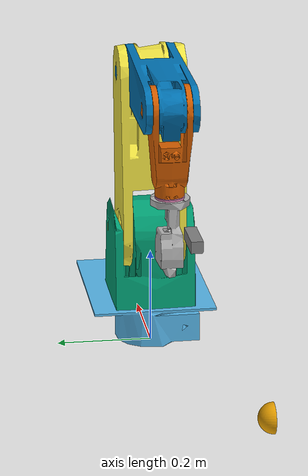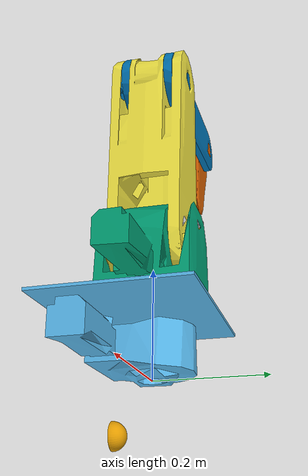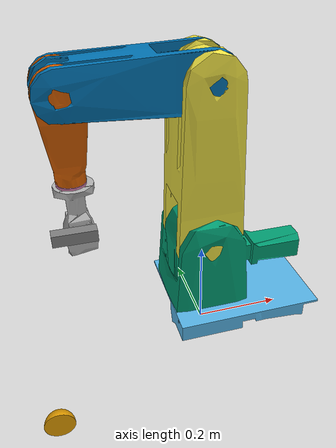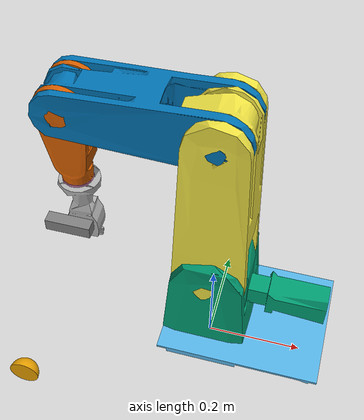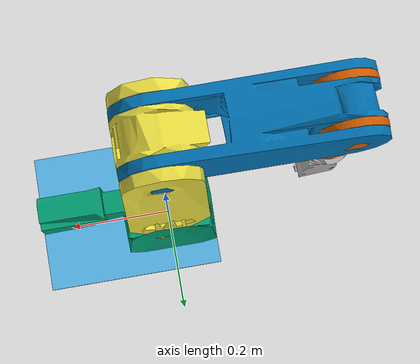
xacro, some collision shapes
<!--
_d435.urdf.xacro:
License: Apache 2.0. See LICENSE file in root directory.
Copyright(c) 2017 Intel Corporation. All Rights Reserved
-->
<?xml version="1.0"?>
<robot xmlns:xacro="http://www.ros.org/wiki/xacro" name="rldp5">

    <!-- Useful Variables (Properties) -->
    <xacro:property name="effort" value="10" />
    <xacro:property name="velocity" value="10" />

    <!-- Useful Macros -->
    <xacro:macro name="default_inertial" params="mass">
        <inertial>
            <mass value="${mass}" />
            <inertia ixx="1.0" ixy="0.0" ixz="0.0"
                     iyy="1.0" iyz="0.0"
                     izz="1.0" />
        </inertial>
    </xacro:macro>

    <xacro:include filename="$(find rldp5_description)/urdf/_d435.urdf.xacro" />

    <xacro:macro name="default_transmission" params="number">
        <transmission name="transmission_${number}">
            <type>transmission_interface/SimpleTransmission</type>
            <joint name="joint_${number}">
                <hardwareInterface>hardware_interface/PositionJointInterface</hardwareInterface>
            </joint>
            <actuator name="motor_${number}">
                <hardwareInterface>hardware_interface/PositionJointInterface</hardwareInterface>
                <mechanicalReduction>1</mechanicalReduction>
            </actuator>
        </transmission>
    </xacro:macro>

    <!-- Links -->
    <link name="world"/>

    <link name="base_link">
        <inertial>
            <origin xyz="0.04223218345086115 -0.01938787744257538 0.057495548139883904" rpy="0 0 0"/>
            <mass value="2.4067491698035863"/>
            <inertia ixx="0.008466" iyy="0.018795" izz="0.024001" ixy="0.002277" iyz="-0.000333" ixz="-0.000705"/>
        </inertial>
        <visual>
            <origin rpy="0 0 0" xyz="0 0 0"/>
            <geometry>
                <mesh filename="package://rldp5_description/mesh/base_link.stl" scale="0.001 0.001 0.001"/>
            </geometry>
        </visual>
        <collision>
            <origin rpy="0 0 0" xyz="0 0 0"/>
            <geometry>
                <mesh filename="package://rldp5_description/mesh/base_link.stl" scale="0.001 0.001 0.001"/>
            </geometry>
        </collision>
    </link>

    <link name="link_1">
        <inertial>
            <origin xyz="0.02666189292548051 -4.87712308473133e-07 0.11114216106472456" rpy="0 0 0"/>
            <mass value="2.489938203553284"/>
            <inertia ixx="0.010589" iyy="0.021835" izz="0.017706" ixy="3e-06" iyz="-0.0" ixz="0.002056"/>
        </inertial>
        <visual>
            <origin rpy="0 0 0" xyz="0.0 0.0 -0.1022"/>
            <geometry>
                <mesh filename="package://rldp5_description/mesh/link_1.stl" scale="0.001 0.001 0.001"/>
            </geometry>
        </visual>
        <collision>
            <origin rpy="0 0 0" xyz="0.0 0.0 -0.1022"/>
            <geometry>
                <mesh filename="package://rldp5_description/mesh/link_1.stl" scale="0.001 0.001 0.001"/>
            </geometry>
        </collision>
    </link>

    <link name="link_2">
        <inertial>
            <origin xyz="-0.0025797033685453323 0.08740384931769365 0.23089426213956546" rpy="0 0 0"/>
            <mass value="1.7064644306239998"/>
            <inertia ixx="0.027922" iyy="0.027117" izz="0.005495" ixy="1.4e-05" iyz="-3.8e-05" ixz="0.000507"/>
        </inertial>
        <visual>
            <origin rpy="0 0 0" xyz="0.0 0.0875 -0.2472"/>
            <geometry>
                <mesh filename="package://rldp5_description/mesh/link_2.stl" scale="0.001 0.001 0.001"/>
            </geometry>
        </visual>
        <collision>
            <origin rpy="0 0 0" xyz="0.0 0.0875 -0.2472"/>
            <geometry>
                <mesh filename="package://rldp5_description/mesh/link_2.stl" scale="0.001 0.001 0.001"/>
            </geometry>
        </collision>
    </link>

    <link name="link_3">
        <inertial>
            <origin xyz="-0.17767994097579132 0.07055070946330594 -0.0021365928026594316" rpy="0 0 0"/>
            <mass value="0.8476040154017905"/>
            <inertia ixx="0.001758" iyy="0.008757" izz="0.008954" ixy="-4e-06" iyz="-3e-06" ixz="-0.000161"/>
        </inertial>
        <visual>
            <origin rpy="0 0 0" xyz="0.0 0.0706 -0.5972"/>
            <geometry>
                <mesh filename="package://rldp5_description/mesh/link_3.stl" scale="0.001 0.001 0.001"/>
            </geometry>
        </visual>
        <collision>
            <origin rpy="0 0 0" xyz="0.0 0.0706 -0.5972"/>
            <geometry>
                <mesh filename="package://rldp5_description/mesh/link_3.stl" scale="0.001 0.001 0.001"/>
            </geometry>
        </collision>
    </link>

    <link name="link_4">
        <inertial>
            <origin xyz="-0.00026026868676498616 0.05460448637419659 -0.095038323418843" rpy="0 0 0"/>
            <mass value="0.2564792674883184"/>
            <inertia ixx="0.001174" iyy="0.0011" izz="0.000275" ixy="-0.0" iyz="0.0" ixz="-1e-06"/>
        </inertial>
        <visual>
            <origin rpy="0 0 0" xyz="0.27 0.0546 -0.5972"/>
            <geometry>
                <mesh filename="package://rldp5_description/mesh/link_4.stl" scale="0.001 0.001 0.001"/>
            </geometry>
        </visual>
        <collision>
            <origin rpy="0 0 0" xyz="0.27 0.0546 -0.5972"/>
            <geometry>
                <mesh filename="package://rldp5_description/mesh/link_4.stl" scale="0.001 0.001 0.001"/>
            </geometry>
        </collision>
    </link>

    <link name="eef">
        <inertial>
            <origin xyz="-1.311241328183499e-06 2.1073781334110024e-05 -0.0010894994201211539" rpy="0 0 0"/>
            <mass value="0.0722497566624133"/>
            <inertia ixx="1.7e-05" iyy="1.7e-05" izz="3.3e-05" ixy="-0.0" iyz="-0.0" ixz="-0.0"/>
        </inertial>
        <visual>
            <origin rpy="0 0 0" xyz="0.27 -0.0 -0.4132"/>
            <geometry>
                <mesh filename="package://rldp5_description/mesh/eef.stl" scale="0.001 0.001 0.001"/>
            </geometry>
        </visual>
        <collision>
            <origin rpy="0 0 0" xyz="0.27 -0.0 -0.4132"/>
            <geometry>
                <mesh filename="package://rldp5_description/mesh/eef.stl" scale="0.001 0.001 0.001"/>
            </geometry>
        </collision>
    </link>

  <link name="tl_link">
    <visual>
      <origin xyz="0 0 0" rpy="0 3.13 0"/>
      <geometry>
	<mesh filename="package://rldp5_description/mesh/tool1.stl"/>
     </geometry>
     </visual>
    <collision>
      <origin xyz="0 0 0" rpy="0 3.13 0"/>
      <geometry>
	<mesh filename="package://rldp5_description/mesh/tool1.stl"/>
      </geometry>
    </collision>
  </link>

 <link name="t2_link">
    <visual>
      <origin xyz="-0.3 -0.2 0" rpy="-1.57 0 0"/>
      <geometry>
	<mesh filename="package://rldp5_description/mesh/tool2.stl"/>
     </geometry>
     </visual>
    <collision>
      <origin xyz="0 0 0" rpy="0 0 0"/>
      <geometry>
	<mesh filename="package://rldp5_description/mesh/tool2.stl"/>
      </geometry>
    </collision>
  </link>

<link name="tool_link"></link>

    <!-- Joints -->
    <joint name="virtual_joint" type="fixed">
        <parent link="world"/>
        <child link="base_link"/>
        <origin xyz="0 0 0" rpy="0 0 0"/>
    </joint>

    <joint name ="joint_1" type="revolute">
        <parent link="base_link"/>
        <child link = "link_1"/>
        <origin xyz="0.0 0.0 0.1022"/>
        <axis xyz="-0.0 0.0 -1.0"/>
        <limit upper="3.141593" lower="0.0" effort="${effort}" velocity="${velocity}"/>
    </joint>

    <joint name ="joint_2" type="revolute">
        <parent link="link_1"/>
        <child link = "link_2"/>
        <origin xyz="0.0 -0.0875 0.145"/>
        <axis xyz="0.0 1.0 0.0"/>
        <limit upper="0.872665" lower="-0.872665" effort="${effort}" velocity="${velocity}"/>
    </joint>

    <joint name ="joint_3" type="revolute">
        <parent link="link_2"/>
        <child link = "link_3"/>
        <origin xyz="0.0 0.0169 0.35"/>
        <axis xyz="0.0 1.0 0.0"/>
        <limit upper="3.752458" lower="-0.523599" effort="${effort}" velocity="${velocity}"/>
    </joint>

    <joint name ="joint_4" type="revolute">
        <parent link="link_3"/>
        <child link = "link_4"/>
        <origin xyz="-0.27 0.016 0.0"/>
        <axis xyz="0.0 1.0 0.0"/>
        <limit upper="3.752458" lower="-0.785398" effort="${effort}" velocity="${velocity}"/>
    </joint>

    <joint name ="joint_5" type="revolute">
        <parent link="link_4"/>
        <child link = "eef"/>
        <origin xyz="0.0 0.0546 -0.184"/>
        <axis xyz="0.0 0.0 -1.0"/>
        <limit upper="6.283185" lower="0.0" effort="${effort}" velocity="${velocity}"/>
    </joint>

    <joint name ="eef_to_tool" type="fixed">
        <parent link="eef"/>
        <child link = "tool_link"/>
        <origin xyz="0 0 0"/>
    </joint>

     <joint name ="tool_joint" type="fixed">
        <parent link="eef"/>
        <child link = "tl_link"/>
        <origin xyz="0 0 0"/>
    </joint>

<joint name ="tool1_joint" type="fixed">
        <parent link="world"/>
        <child link = "t2_link"/>
        <origin xyz="0 0 0"/>
    </joint>

    <!-- Transmissions -->
    <xacro:default_transmission number="1"/>
    <xacro:default_transmission number="2"/>
    <xacro:default_transmission number="3"/>
    <xacro:default_transmission number="4"/>
    <xacro:default_transmission number="5"/>

   <xacro:sensor_d435 name="camera1" topics_ns="camera1" parent="tl_link" publish_pointcloud="true"><origin xyz="-0.01 -0.06 -0.09" rpy="0 1.57 1.57"/>
  </xacro:sensor_d435>

    <!-- gazebo ros_control plugin -->
    <gazebo>
        <plugin name="gazebo_ros_control" filename="libgazebo_ros_control.so">
            <robotNamespace></robotNamespace>
            <robotSimType>gazebo_ros_control/DefaultRobotHWSim</robotSimType>
            <legacyModeNS>true</legacyModeNS>
        </plugin>

    </gazebo>

</robot>

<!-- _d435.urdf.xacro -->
<robot name="sensor_d435" xmlns:xacro="http://ros.org/wiki/xacro">
  <!--File includes-->
  <xacro:include filename="$(find rldp5_description)/urdf/_d435.gazebo.xacro"/>

  <xacro:macro name="sensor_d435" params="name:=camera topics_ns:=camera parent *origin publish_pointcloud:=true">
    <xacro:property name="M_PI" value="3.1415926535897931" />

    <!-- The following values are approximate, and the camera node
     publishing TF values with actual calibrated camera extrinsic values -->
    <xacro:property name="d435_cam_depth_to_left_ir_offset" value="0.0"/>
    <xacro:property name="d435_cam_depth_to_right_ir_offset" value="-0.050"/>
    <xacro:property name="d435_cam_depth_to_color_offset" value="0.015"/>

    <!-- The following values model the aluminum peripherial case for the
    D435 camera, with the camera joint represented by the actual
    peripherial camera tripod mount -->
    <xacro:property name="d435_cam_width" value="0.090"/>
    <xacro:property name="d435_cam_height" value="0.025"/>
    <xacro:property name="d435_cam_depth" value="0.02505"/>
    <xacro:property name="d435_cam_mount_from_center_offset" value="0.0149"/>

    <!-- The following offset is relative the the physical D435 camera peripherial
    camera tripod mount -->
    <xacro:property name="d435_cam_depth_px" value="${d435_cam_mount_from_center_offset}"/>
    <xacro:property name="d435_cam_depth_py" value="0.0175"/>
    <xacro:property name="d435_cam_depth_pz" value="${d435_cam_height/2}"/>

    <material name="${name}_aluminum">
    <color rgba="0.5 0.5 0.5 1"/>
    </material>

    <!-- camera body, with origin at bottom screw mount -->
    <joint name="${name}_joint" type="fixed">
      <xacro:insert_block name="origin" />
      <parent link="${parent}"/>
      <child link="${name}_bottom_screw_frame" />
    </joint>
    <link name="${name}_bottom_screw_frame"/>

    <joint name="${name}_link_joint" type="fixed">
      <origin xyz="0 ${d435_cam_depth_py} ${d435_cam_depth_pz}" rpy="0 0 0"/>
      <parent link="${name}_bottom_screw_frame"/>
      <child link="${name}_link" />
    </joint>

    <link name="${name}_link">
      <visual>
      <origin xyz="${d435_cam_mount_from_center_offset} ${-d435_cam_depth_py} 0" rpy="${M_PI/2} 0 ${M_PI/2}"/>
        <geometry>
          <mesh filename="package://realsense2_description/meshes/d435.dae" />
        </geometry>
        <material name="${name}_aluminum"/>
      </visual>
      <collision>
        <origin xyz="0 ${-d435_cam_depth_py} 0" rpy="0 0 0"/>
        <geometry>
        <box size="${d435_cam_depth} ${d435_cam_width} ${d435_cam_height}"/>
        </geometry>
      </collision>
      <inertial>
        <!-- The following are not reliable values, and should not be used for modeling -->
        <mass value="0.564" />
        <origin xyz="0 0 0" />
        <inertia ixx="0.003881243" ixy="0.0" ixz="0.0" iyy="0.000498940" iyz="0.0" izz="0.003879257" />
      </inertial>
    </link>

    <!-- camera depth joints and links -->
    <joint name="${name}_depth_joint" type="fixed">
      <origin xyz="0 0 0" rpy="0 0 0"/>
      <parent link="${name}_link"/>
      <child link="${name}_depth_frame" />
    </joint>
    <link name="${name}_depth_frame"/>

    <joint name="${name}_depth_optical_joint" type="fixed">
      <origin xyz="0 0 0" rpy="${-M_PI/2} 0 ${-M_PI/2}" />
      <parent link="${name}_depth_frame" />
      <child link="${name}_depth_optical_frame" />
    </joint>
    <link name="${name}_depth_optical_frame"/>

    <!-- camera left IR joints and links -->
    <joint name="${name}_left_ir_joint" type="fixed">
      <origin xyz="0 ${d435_cam_depth_to_left_ir_offset} 0" rpy="0 0 0" />
      <parent link="${name}_depth_frame" />
      <child link="${name}_left_ir_frame" />
    </joint>
    <link name="${name}_left_ir_frame"/>

    <joint name="${name}_left_ir_optical_joint" type="fixed">
      <origin xyz="0 0 0" rpy="${-M_PI/2} 0 ${-M_PI/2}" />
      <parent link="${name}_left_ir_frame" />
      <child link="${name}_left_ir_optical_frame" />
    </joint>
    <link name="${name}_left_ir_optical_frame"/>

    <!-- camera right IR joints and links -->
    <joint name="${name}_right_ir_joint" type="fixed">
      <origin xyz="0 ${d435_cam_depth_to_right_ir_offset} 0" rpy="0 0 0" />
      <parent link="${name}_depth_frame" />
      <child link="${name}_right_ir_frame" />
    </joint>
    <link name="${name}_right_ir_frame"/>

    <joint name="${name}_right_ir_optical_joint" type="fixed">
      <origin xyz="0 0 0" rpy="${-M_PI/2} 0 ${-M_PI/2}" />
      <parent link="${name}_right_ir_frame" />
      <child link="${name}_right_ir_optical_frame" />
    </joint>
    <link name="${name}_right_ir_optical_frame"/>

    <!-- camera color joints and links -->
    <joint name="${name}_color_joint" type="fixed">
      <origin xyz="0 ${d435_cam_depth_to_color_offset} 0" rpy="0 0 0" />
      <parent link="${name}_depth_frame" />
      <child link="${name}_color_frame" />
    </joint>
    <link name="${name}_color_frame"/>

    <joint name="${name}_color_optical_joint" type="fixed">
      <origin xyz="0 0 0" rpy="${-M_PI/2} 0 ${-M_PI/2}" />
      <parent link="${name}_color_frame" />
      <child link="${name}_color_optical_frame" />
    </joint>
    <link name="${name}_color_optical_frame"/>

    <!-- Realsense Gazebo Plugin -->
    <xacro:gazebo_d435 camera_name="${name}" reference_link="${name}_link" topics_ns="${topics_ns}" depth_optical_frame="${name}_depth_optical_frame" color_optical_frame="${name}_color_optical_frame" infrared1_optical_frame="${name}_left_ir_optical_frame" infrared2_optical_frame="${name}_right_ir_optical_frame" publish_pointcloud="${publish_pointcloud}"/>

  </xacro:macro>
</robot>
